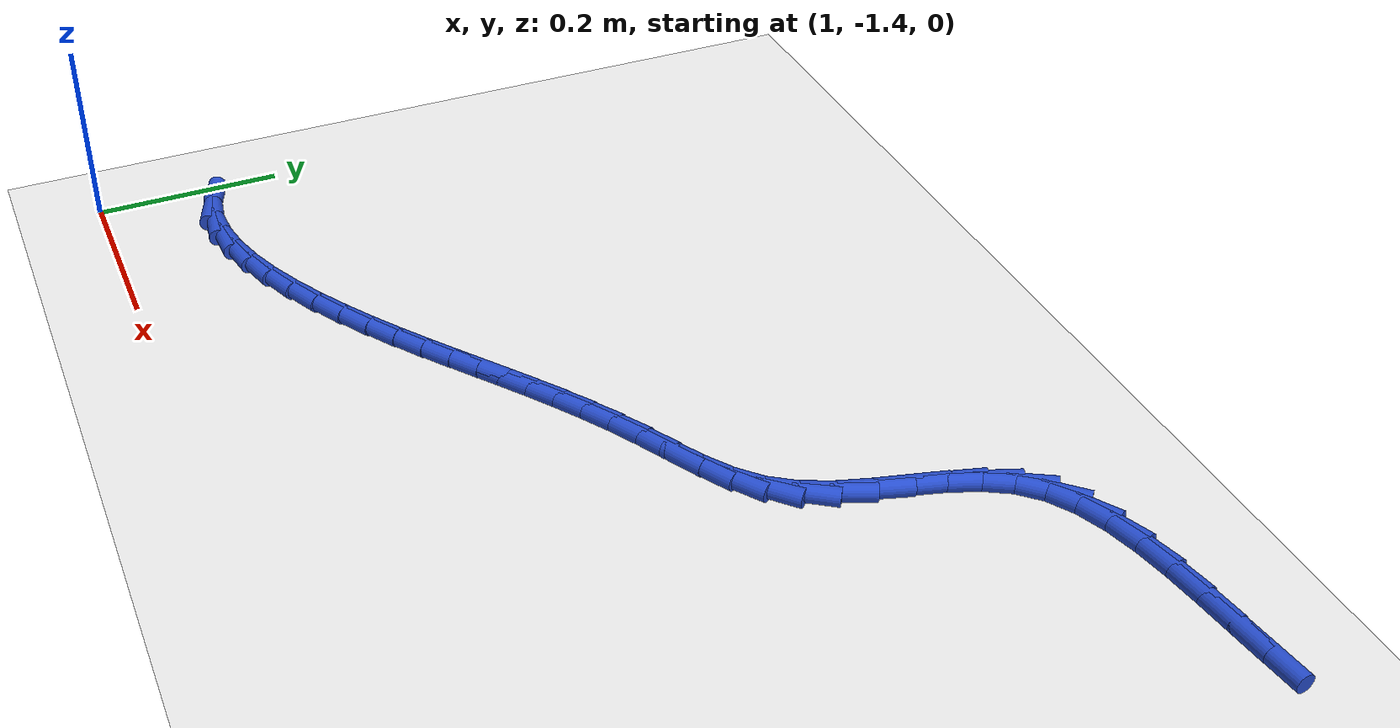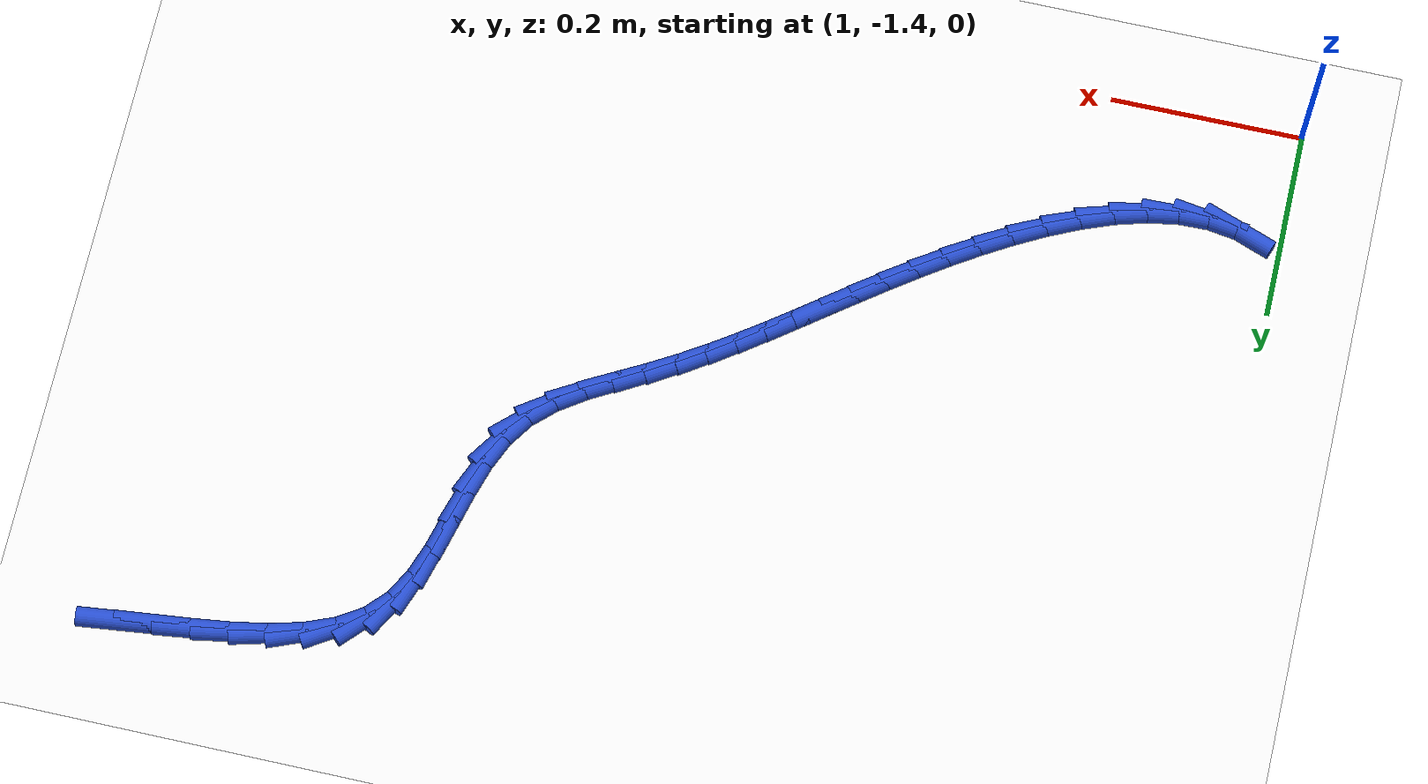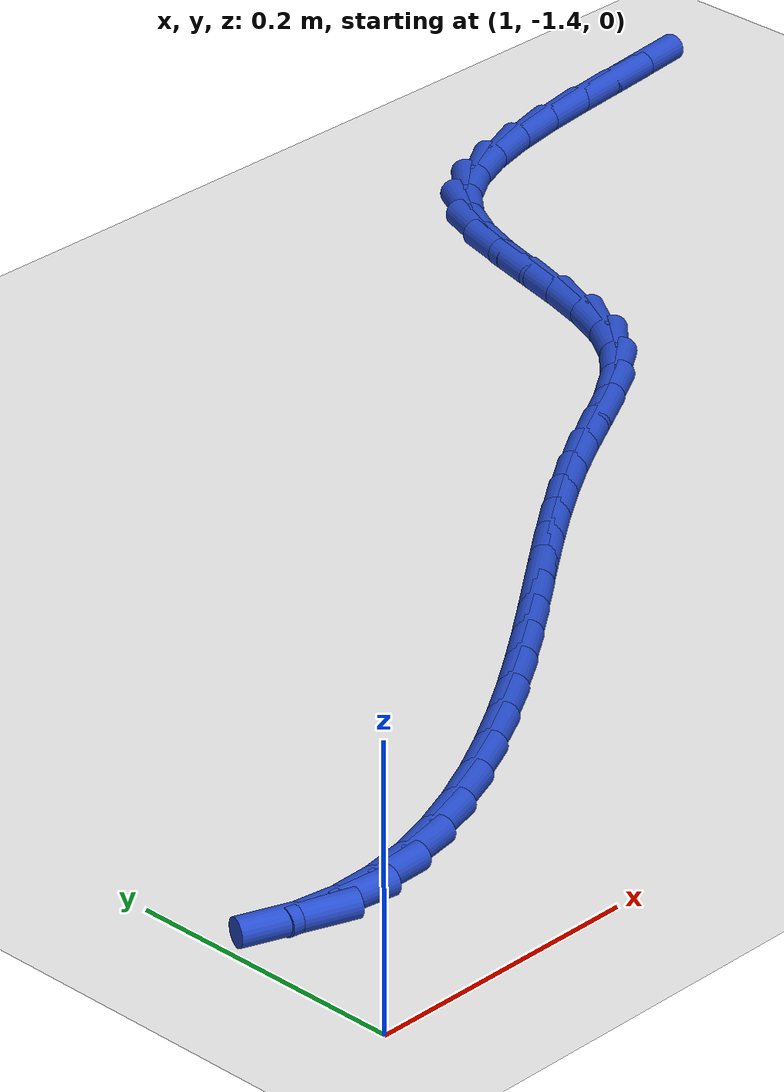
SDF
<sdf version="1.6">
 <world name="default">
  <model name="ground_plane">
   <static>1</static>
   <link name="link">
    <collision name="collision">
     <geometry><plane><normal>0 0 1</normal><size>100 100</size></plane></geometry>
     <surface><friction><ode><mu>100</mu><mu2>50</mu2></ode></friction></surface>
    </collision>
    <visual name="visual">
     <cast_shadows>0</cast_shadows>
     <geometry><plane><normal>0 0 1</normal><size>100 100</size></plane></geometry>
     <material>
      <script><uri>file://media/materials/scripts/gazebo.material</uri><name>Gazebo/WhiteGlow</name></script>
     </material>
    </visual>
   </link>
  </model>
  <model name="line">
   <link name="link_134">
    <pose>2.0630583978375006 -0.6248947266424388 0.01 0 1.57 0.11646641872463609</pose>
    <collision name="collision">
     <geometry><cylinder><radius>0.01</radius><length>0.08</length></cylinder></geometry>
    </collision>
    <visual name="visual">
     <material>
      <script><name>Gazebo/Blue</name><uri>file://media/materials/scripts/gazebo.material</uri></script>
     </material>
     <geometry><cylinder><radius>0.01</radius><length>0.08</length></cylinder></geometry>
    </visual>
   </link>
   <link name="link_135">
    <pose>2.025457378257186 -0.6292938914599208 0.01 0 1.57 0.10945697213029557</pose>
    <collision name="collision">
     <geometry><cylinder><radius>0.01</radius><length>0.08</length></cylinder></geometry>
    </collision>
    <visual name="visual">
     <material>
      <script><name>Gazebo/Blue</name><uri>file://media/materials/scripts/gazebo.material</uri></script>
     </material>
     <geometry><cylinder><radius>0.01</radius><length>0.08</length></cylinder></geometry>
    </visual>
   </link>
   <link name="link_136">
    <pose>1.9868741416416134 -0.6335340427643451 0.01 0 1.57 0.1291036838261443</pose>
    <collision name="collision">
     <geometry><cylinder><radius>0.01</radius><length>0.08</length></cylinder></geometry>
    </collision>
    <visual name="visual">
     <material>
      <script><name>Gazebo/Blue</name><uri>file://media/materials/scripts/gazebo.material</uri></script>
     </material>
     <geometry><cylinder><radius>0.01</radius><length>0.08</length></cylinder></geometry>
    </visual>
   </link>
   <link name="link_137">
    <pose>1.948433466968629 -0.6385246336582606 0.01 0 1.57 0.17703179599258512</pose>
    <collision name="collision">
     <geometry><cylinder><radius>0.01</radius><length>0.08</length></cylinder></geometry>
    </collision>
    <visual name="visual">
     <material>
      <script><name>Gazebo/Blue</name><uri>file://media/materials/scripts/gazebo.material</uri></script>
     </material>
     <geometry><cylinder><radius>0.01</radius><length>0.08</length></cylinder></geometry>
    </visual>
   </link>
   <link name="link_138">
    <pose>1.9112601332160777 -0.6451751172442152 0.01 0 1.57 0.25912115692925947</pose>
    <collision name="collision">
     <geometry><cylinder><radius>0.01</radius><length>0.08</length></cylinder></geometry>
    </collision>
    <visual name="visual">
     <material>
      <script><name>Gazebo/Blue</name><uri>file://media/materials/scripts/gazebo.material</uri></script>
     </material>
     <geometry><cylinder><radius>0.01</radius><length>0.08</length></cylinder></geometry>
    </visual>
   </link>
   <link name="link_139">
    <pose>1.8764789193618059 -0.6543949466247574 0.01 0 1.57 0.38581404042511375</pose>
    <collision name="collision">
     <geometry><cylinder><radius>0.01</radius><length>0.08</length></cylinder></geometry>
    </collision>
    <visual name="visual">
     <material>
      <script><name>Gazebo/Blue</name><uri>file://media/materials/scripts/gazebo.material</uri></script>
     </material>
     <geometry><cylinder><radius>0.01</radius><length>0.08</length></cylinder></geometry>
    </visual>
   </link>
   <link name="link_140">
    <pose>1.8452146043836581 -0.6670935749024357 0.01 0 1.57 0.570601656440461</pose>
    <collision name="collision">
     <geometry><cylinder><radius>0.01</radius><length>0.08</length></cylinder></geometry>
    </collision>
    <visual name="visual">
     <material>
      <script><name>Gazebo/Blue</name><uri>file://media/materials/scripts/gazebo.material</uri></script>
     </material>
     <geometry><cylinder><radius>0.01</radius><length>0.08</length></cylinder></geometry>
    </visual>
   </link>
   <link name="link_141">
    <pose>1.8185919672594824 -0.684180455179798 0.01 0 1.57 0.8194503382036685</pose>
    <collision name="collision">
     <geometry><cylinder><radius>0.01</radius><length>0.08</length></cylinder></geometry>
    </collision>
    <visual name="visual">
     <material>
      <script><name>Gazebo/Blue</name><uri>file://media/materials/scripts/gazebo.material</uri></script>
     </material>
     <geometry><cylinder><radius>0.01</radius><length>0.08</length></cylinder></geometry>
    </visual>
   </link>
   <link name="link_142">
    <pose>1.797705819111038 -0.7065397750132694 0.01 0 1.57 1.0646376573757965</pose>
    <collision name="collision">
     <geometry><cylinder><radius>0.01</radius><length>0.08</length></cylinder></geometry>
    </collision>
    <visual name="visual">
     <material>
      <script><name>Gazebo/Blue</name><uri>file://media/materials/scripts/gazebo.material</uri></script>
     </material>
     <geometry><cylinder><radius>0.01</radius><length>0.08</length></cylinder></geometry>
    </visual>
   </link>
   <link name="link_143">
    <pose>1.782456780282045 -0.7340489137946568 0.01 0 1.57 1.224031594178702</pose>
    <collision name="collision">
     <geometry><cylinder><radius>0.01</radius><length>0.08</length></cylinder></geometry>
    </collision>
    <visual name="visual">
     <material>
      <script><name>Gazebo/Blue</name><uri>file://media/materials/scripts/gazebo.material</uri></script>
     </material>
     <geometry><cylinder><radius>0.01</radius><length>0.08</length></cylinder></geometry>
    </visual>
   </link>
   <link name="link_144">
    <pose>1.7711770734960341 -0.7652629533746969 0.01 0 1.57 1.3051038989345862</pose>
    <collision name="collision">
     <geometry><cylinder><radius>0.01</radius><length>0.08</length></cylinder></geometry>
    </collision>
    <visual name="visual">
     <material>
      <script><name>Gazebo/Blue</name><uri>file://media/materials/scripts/gazebo.material</uri></script>
     </material>
     <geometry><cylinder><radius>0.01</radius><length>0.08</length></cylinder></geometry>
    </visual>
   </link>
   <link name="link_145">
    <pose>1.7620923646908924 -0.7986471388345265 0.01 0 1.57 1.3214195105531457</pose>
    <collision name="collision">
     <geometry><cylinder><radius>0.01</radius><length>0.08</length></cylinder></geometry>
    </collision>
    <visual name="visual">
     <material>
      <script><name>Gazebo/Blue</name><uri>file://media/materials/scripts/gazebo.material</uri></script>
     </material>
     <geometry><cylinder><radius>0.01</radius><length>0.08</length></cylinder></geometry>
    </visual>
   </link>
   <link name="link_146">
    <pose>1.753428319804507 -0.8326667152552854 0.01 0 1.57 1.27707932578999</pose>
    <collision name="collision">
     <geometry><cylinder><radius>0.01</radius><length>0.08</length></cylinder></geometry>
    </collision>
    <visual name="visual">
     <material>
      <script><name>Gazebo/Blue</name><uri>file://media/materials/scripts/gazebo.material</uri></script>
     </material>
     <geometry><cylinder><radius>0.01</radius><length>0.08</length></cylinder></geometry>
    </visual>
   </link>
   <link name="link_147">
    <pose>1.7434106047747653 -0.865786927718112 0.01 0 1.57 1.1660549737205643</pose>
    <collision name="collision">
     <geometry><cylinder><radius>0.01</radius><length>0.08</length></cylinder></geometry>
    </collision>
    <visual name="visual">
     <material>
      <script><name>Gazebo/Blue</name><uri>file://media/materials/scripts/gazebo.material</uri></script>
     </material>
     <geometry><cylinder><radius>0.01</radius><length>0.08</length></cylinder></geometry>
    </visual>
   </link>
   <link name="link_148">
    <pose>1.7302648855395546 -0.896473021304147 0.01 0 1.57 0.9773140693521002</pose>
    <collision name="collision">
     <geometry><cylinder><radius>0.01</radius><length>0.08</length></cylinder></geometry>
    </collision>
    <visual name="visual">
     <material>
      <script><name>Gazebo/Blue</name><uri>file://media/materials/scripts/gazebo.material</uri></script>
     </material>
     <geometry><cylinder><radius>0.01</radius><length>0.08</length></cylinder></geometry>
    </visual>
   </link>
   <link name="link_149">
    <pose>1.7122324575978565 -0.9232031408590199 0.01 0 1.57 0.7589707874983669</pose>
    <collision name="collision">
     <geometry><cylinder><radius>0.01</radius><length>0.08</length></cylinder></geometry>
    </collision>
    <visual name="visual">
     <material>
      <script><name>Gazebo/Blue</name><uri>file://media/materials/scripts/gazebo.material</uri></script>
     </material>
     <geometry><cylinder><radius>0.01</radius><length>0.08</length></cylinder></geometry>
    </visual>
   </link>
   <link name="link_150">
    <pose>1.6887692164389665 -0.9454578940444245 0.01 0 1.57 0.6057645360713192</pose>
    <collision name="collision">
     <geometry><cylinder><radius>0.01</radius><length>0.08</length></cylinder></geometry>
    </collision>
    <visual name="visual">
     <material>
      <script><name>Gazebo/Blue</name><uri>file://media/materials/scripts/gazebo.material</uri></script>
     </material>
     <geometry><cylinder><radius>0.01</radius><length>0.08</length></cylinder></geometry>
    </visual>
   </link>
   <link name="link_151">
    <pose>1.6613929107558345 -0.9644196266953801 0.01 0 1.57 0.5221541113289876</pose>
    <collision name="collision">
     <geometry><cylinder><radius>0.01</radius><length>0.08</length></cylinder></geometry>
    </collision>
    <visual name="visual">
     <material>
      <script><name>Gazebo/Blue</name><uri>file://media/materials/scripts/gazebo.material</uri></script>
     </material>
     <geometry><cylinder><radius>0.01</radius><length>0.08</length></cylinder></geometry>
    </visual>
   </link>
   <link name="link_152">
    <pose>1.6318213912574824 -0.9814358376455306 0.01 0 1.57 0.5000617327388616</pose>
    <collision name="collision">
     <geometry><cylinder><radius>0.01</radius><length>0.08</length></cylinder></geometry>
    </collision>
    <visual name="visual">
     <material>
      <script><name>Gazebo/Blue</name><uri>file://media/materials/scripts/gazebo.material</uri></script>
     </material>
     <geometry><cylinder><radius>0.01</radius><length>0.08</length></cylinder></geometry>
    </visual>
   </link>
   <link name="link_153">
    <pose>1.6017725086529286 -0.9978540257285192 0.01 0 1.57 0.529061917613597</pose>
    <collision name="collision">
     <geometry><cylinder><radius>0.01</radius><length>0.08</length></cylinder></geometry>
    </collision>
    <visual name="visual">
     <material>
      <script><name>Gazebo/Blue</name><uri>file://media/materials/scripts/gazebo.material</uri></script>
     </material>
     <geometry><cylinder><radius>0.01</radius><length>0.08</length></cylinder></geometry>
    </visual>
   </link>
   <link name="link_154">
    <pose>1.5727195793529063 -1.0148400410524554 0.01 0 1.57 0.5668212488124111</pose>
    <collision name="collision">
     <geometry><cylinder><radius>0.01</radius><length>0.08</length></cylinder></geometry>
    </collision>
    <visual name="visual">
     <material>
      <script><name>Gazebo/Blue</name><uri>file://media/materials/scripts/gazebo.material</uri></script>
     </material>
     <geometry><cylinder><radius>0.01</radius><length>0.08</length></cylinder></geometry>
    </visual>
   </link>
   <link name="link_155">
    <pose>1.5448313855953193 -1.0325906796027116 0.01 0 1.57 0.5981493659906679</pose>
    <collision name="collision">
     <geometry><cylinder><radius>0.01</radius><length>0.08</length></cylinder></geometry>
    </collision>
    <visual name="visual">
     <material>
      <script><name>Gazebo/Blue</name><uri>file://media/materials/scripts/gazebo.material</uri></script>
     </material>
     <geometry><cylinder><radius>0.01</radius><length>0.08</length></cylinder></geometry>
    </visual>
   </link>
   <link name="link_156">
    <pose>1.5178434461017238 -1.0509808939009198 0.01 0 1.57 0.622290530808653</pose>
    <collision name="collision">
     <geometry><cylinder><radius>0.01</radius><length>0.08</length></cylinder></geometry>
    </collision>
    <visual name="visual">
     <material>
      <script><name>Gazebo/Blue</name><uri>file://media/materials/scripts/gazebo.material</uri></script>
     </material>
     <geometry><cylinder><radius>0.01</radius><length>0.08</length></cylinder></geometry>
    </visual>
   </link>
   <link name="link_157">
    <pose>1.4914909919513593 -1.0698854227978252 0.01 0 1.57 0.638736947534419</pose>
    <collision name="collision">
     <geometry><cylinder><radius>0.01</radius><length>0.08</length></cylinder></geometry>
    </collision>
    <visual name="visual">
     <material>
      <script><name>Gazebo/Blue</name><uri>file://media/materials/scripts/gazebo.material</uri></script>
     </material>
     <geometry><cylinder><radius>0.01</radius><length>0.08</length></cylinder></geometry>
    </visual>
   </link>
   <link name="link_158">
    <pose>1.4655092542234673 -1.0891790051441739 0.01 0 1.57 0.647213913376431</pose>
    <collision name="collision">
     <geometry><cylinder><radius>0.01</radius><length>0.08</length></cylinder></geometry>
    </collision>
    <visual name="visual">
     <material>
      <script><name>Gazebo/Blue</name><uri>file://media/materials/scripts/gazebo.material</uri></script>
     </material>
     <geometry><cylinder><radius>0.01</radius><length>0.08</length></cylinder></geometry>
    </visual>
   </link>
   <link name="link_159">
    <pose>1.4396334639972868 -1.108736379790711 0.01 0 1.57 0.6476657862410621</pose>
    <collision name="collision">
     <geometry><cylinder><radius>0.01</radius><length>0.08</length></cylinder></geometry>
    </collision>
    <visual name="visual">
     <material>
      <script><name>Gazebo/Blue</name><uri>file://media/materials/scripts/gazebo.material</uri></script>
     </material>
     <geometry><cylinder><radius>0.01</radius><length>0.08</length></cylinder></geometry>
    </visual>
   </link>
   <link name="link_160">
    <pose>1.413598852352057 -1.1284322855881823 0.01 0 1.57 0.6402403197621199</pose>
    <collision name="collision">
     <geometry><cylinder><radius>0.01</radius><length>0.08</length></cylinder></geometry>
    </collision>
    <visual name="visual">
     <material>
      <script><name>Gazebo/Blue</name><uri>file://media/materials/scripts/gazebo.material</uri></script>
     </material>
     <geometry><cylinder><radius>0.01</radius><length>0.08</length></cylinder></geometry>
    </visual>
   </link>
   <link name="link_161">
    <pose>1.3871406503670187 -1.148141461387334 0.01 0 1.57 0.6252752310558886</pose>
    <collision name="collision">
     <geometry><cylinder><radius>0.01</radius><length>0.08</length></cylinder></geometry>
    </collision>
    <visual name="visual">
     <material>
      <script><name>Gazebo/Blue</name><uri>file://media/materials/scripts/gazebo.material</uri></script>
     </material>
     <geometry><cylinder><radius>0.01</radius><length>0.08</length></cylinder></geometry>
    </visual>
   </link>
   <link name="link_162">
    <pose>1.3599940891214108 -1.1677386460389116 0.01 0 1.57 0.6032870132902605</pose>
    <collision name="collision">
     <geometry><cylinder><radius>0.01</radius><length>0.08</length></cylinder></geometry>
    </collision>
    <visual name="visual">
     <material>
      <script><name>Gazebo/Blue</name><uri>file://media/materials/scripts/gazebo.material</uri></script>
     </material>
     <geometry><cylinder><radius>0.01</radius><length>0.08</length></cylinder></geometry>
    </visual>
   </link>
   <link name="link_163">
    <pose>1.3318943996944745 -1.1870985783936603 0.01 0 1.57 0.5749588997328813</pose>
    <collision name="collision">
     <geometry><cylinder><radius>0.01</radius><length>0.08</length></cylinder></geometry>
    </collision>
    <visual name="visual">
     <material>
      <script><name>Gazebo/Blue</name><uri>file://media/materials/scripts/gazebo.material</uri></script>
     </material>
     <geometry><cylinder><radius>0.01</radius><length>0.08</length></cylinder></geometry>
    </visual>
   </link>
   <link name="link_164">
    <pose>1.3025768131654496 -1.2060959973023262 0.01 0 1.57 0.5406398598986593</pose>
    <collision name="collision">
     <geometry><cylinder><radius>0.01</radius><length>0.08</length></cylinder></geometry>
    </collision>
    <visual name="visual">
     <material>
      <script><name>Gazebo/Blue</name><uri>file://media/materials/scripts/gazebo.material</uri></script>
     </material>
     <geometry><cylinder><radius>0.01</radius><length>0.08</length></cylinder></geometry>
    </visual>
   </link>
   <link name="link_165">
    <pose>1.2718441305221826 -1.22454481835616 0.01 0 1.57 0.49738869035328365</pose>
    <collision name="collision">
     <geometry><cylinder><radius>0.01</radius><length>0.08</length></cylinder></geometry>
    </collision>
    <visual name="visual">
     <material>
      <script><name>Gazebo/Blue</name><uri>file://media/materials/scripts/gazebo.material</uri></script>
     </material>
     <geometry><cylinder><radius>0.01</radius><length>0.08</length></cylinder></geometry>
    </visual>
   </link>
   <link name="link_166">
    <pose>1.2399288717959795 -1.2418721442377039 0.01 0 1.57 0.44220813884726023</pose>
    <collision name="collision">
     <geometry><cylinder><radius>0.01</radius><length>0.08</length></cylinder></geometry>
    </collision>
    <visual name="visual">
     <material>
      <script><name>Gazebo/Blue</name><uri>file://media/materials/scripts/gazebo.material</uri></script>
     </material>
     <geometry><cylinder><radius>0.01</radius><length>0.08</length></cylinder></geometry>
    </visual>
   </link>
   <link name="link_167">
    <pose>1.2072319188958551 -1.2573535261713438 0.01 0 1.57 0.3721305218355368</pose>
    <collision name="collision">
     <geometry><cylinder><radius>0.01</radius><length>0.08</length></cylinder></geometry>
    </collision>
    <visual name="visual">
     <material>
      <script><name>Gazebo/Blue</name><uri>file://media/materials/scripts/gazebo.material</uri></script>
     </material>
     <geometry><cylinder><radius>0.01</radius><length>0.08</length></cylinder></geometry>
    </visual>
   </link>
   <link name="link_168">
    <pose>1.1741545475173563 -1.2702641609133185 0.01 0 1.57 0.2830579599311328</pose>
    <collision name="collision">
     <geometry><cylinder><radius>0.01</radius><length>0.08</length></cylinder></geometry>
    </collision>
    <visual name="visual">
     <material>
      <script><name>Gazebo/Blue</name><uri>file://media/materials/scripts/gazebo.material</uri></script>
     </material>
     <geometry><cylinder><radius>0.01</radius><length>0.08</length></cylinder></geometry>
    </visual>
   </link>
   <link name="link_169">
    <pose>1.1410980333560277 -1.2798792452198668 0.01 0 1.57 0.16978617045514008</pose>
    <collision name="collision">
     <geometry><cylinder><radius>0.01</radius><length>0.08</length></cylinder></geometry>
    </collision>
    <visual name="visual">
     <material>
      <script><name>Gazebo/Blue</name><uri>file://media/materials/scripts/gazebo.material</uri></script>
     </material>
     <geometry><cylinder><radius>0.01</radius><length>0.08</length></cylinder></geometry>
    </visual>
   </link>
   <link name="link_170">
    <pose>1.1084636521074154 -1.285473975847227 0.01 0 1.57 0.02670059200216798</pose>
    <collision name="collision">
     <geometry><cylinder><radius>0.01</radius><length>0.08</length></cylinder></geometry>
    </collision>
    <visual name="visual">
     <material>
      <script><name>Gazebo/Blue</name><uri>file://media/materials/scripts/gazebo.material</uri></script>
     </material>
     <geometry><cylinder><radius>0.01</radius><length>0.08</length></cylinder></geometry>
    </visual>
   </link>
   <link name="link_171">
    <pose>1.076652679467067 -1.2863235495516372 0.01 0 1.57 -0.1499271559919521</pose>
    <collision name="collision">
     <geometry><cylinder><radius>0.01</radius><length>0.08</length></cylinder></geometry>
    </collision>
    <visual name="visual">
     <material>
      <script><name>Gazebo/Blue</name><uri>file://media/materials/scripts/gazebo.material</uri></script>
     </material>
     <geometry><cylinder><radius>0.01</radius><length>0.08</length></cylinder></geometry>
    </visual>
   </link>
   <link name="link_172">
    <pose>1.0460663911305284 -1.281703163089336 0.01 0 1.57 -0.35401343654374945</pose>
    <collision name="collision">
     <geometry><cylinder><radius>0.01</radius><length>0.08</length></cylinder></geometry>
    </collision>
    <visual name="visual">
     <material>
      <script><name>Gazebo/Blue</name><uri>file://media/materials/scripts/gazebo.material</uri></script>
     </material>
     <geometry><cylinder><radius>0.01</radius><length>0.08</length></cylinder></geometry>
    </visual>
   </link>
  </model>
 </world>
</sdf>
